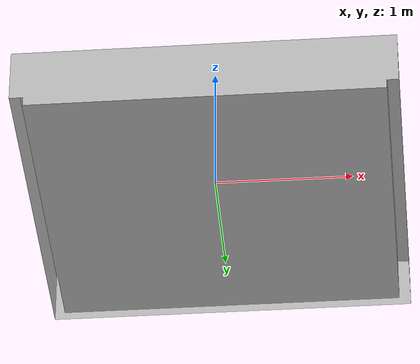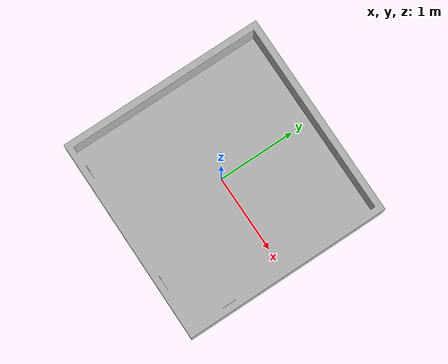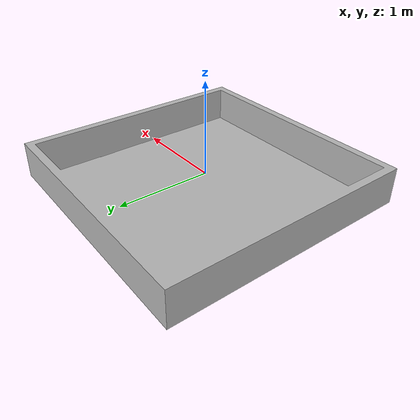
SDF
<?xml version="1.0" ?>
<sdf version="1.6">
  <model name="particle_room">
    <static>true</static>
    <link name="link">
      <collision name="collision">
        <geometry>
          <mesh>
            <uri>model://particle_room/meshes/particle_room.dae</uri>
            <scale>1.2 1.2 1.2</scale>
          </mesh>
        </geometry>
      </collision>
      <visual name="visual">
        <geometry>
          <mesh>
            <uri>model://particle_room/meshes/particle_room.dae</uri>
            <scale>1.2 1.2 1.2</scale>
          </mesh>
        </geometry>
      </visual>
    </link>
  </model>
</sdf>
